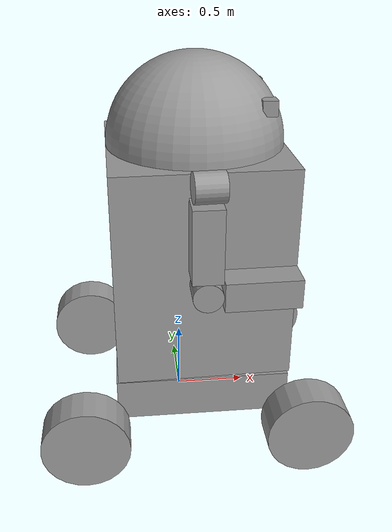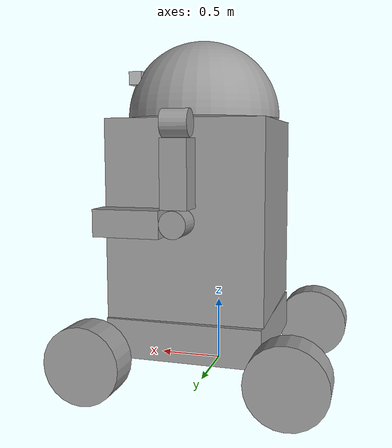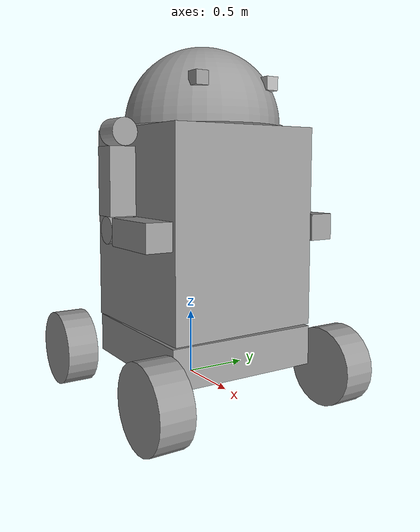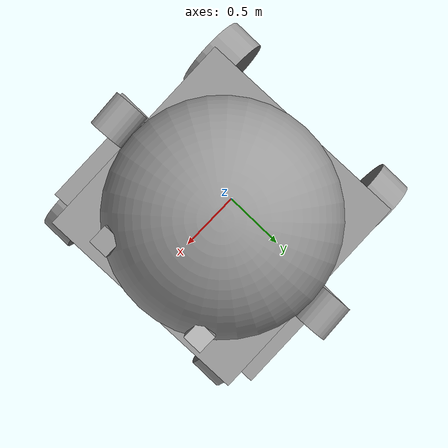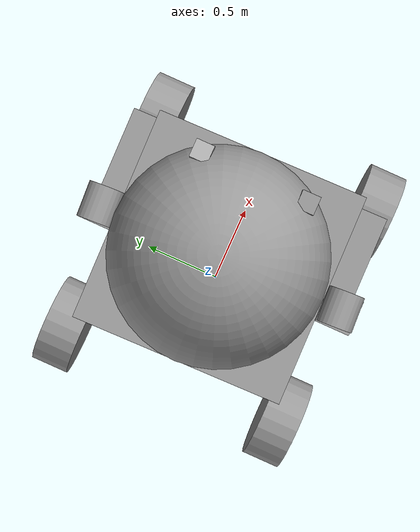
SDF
<?xml version='1.0'?>
<sdf version='1.7'>
  <model name='my_vehicle_hw'>
    <link name='link_0'>
      <inertial>
        <mass>1</mass>
        <inertia>
          <ixx>0.145833</ixx>
          <ixy>0</ixy>
          <ixz>0</ixz>
          <iyy>0.145833</iyy>
          <iyz>0</iyz>
          <izz>0.125</izz>
        </inertia>
        <pose>0 0 0 1.5707 -0 0</pose>
      </inertial>
      <pose>-0.7 0.77503 0.154925 1e-05 -0 0</pose>
      <gravity>1</gravity>
      <self_collide>0</self_collide>
      <kinematic>0</kinematic>
      <enable_wind>0</enable_wind>
      <visual name='visual'>
        <pose>0 0 0 1.5707 -0 0</pose>
        <geometry>
          <cylinder>
            <radius>0.3</radius>
            <length>0.25</length>
          </cylinder>
        </geometry>
        <material>
          <lighting>1</lighting>
          <script>
            <uri>file://media/materials/scripts/gazebo.material</uri>
            <name>Gazebo/Grey</name>
          </script>
          <shader type='pixel'>
            <normal_map>__default__</normal_map>
          </shader>
          <ambient>0.3 0.3 0.3 1</ambient>
          <diffuse>0.7 0.7 0.7 1</diffuse>
          <specular>0.01 0.01 0.01 1</specular>
          <emissive>0 0 0 1</emissive>
        </material>
        <transparency>0</transparency>
        <cast_shadows>1</cast_shadows>
      </visual>
      <collision name='collision'>
        <laser_retro>0</laser_retro>
        <max_contacts>10</max_contacts>
        <pose>0 0 0 1.5707 -0 0</pose>
        <geometry>
          <cylinder>
            <radius>0.3</radius>
            <length>0.25</length>
          </cylinder>
        </geometry>
        <surface>
          <friction>
            <ode>
              <mu>1</mu>
              <mu2>1</mu2>
              <fdir1>0 0 0</fdir1>
              <slip1>0</slip1>
              <slip2>0</slip2>
            </ode>
            <torsional>
              <coefficient>1</coefficient>
              <patch_radius>0</patch_radius>
              <surface_radius>0</surface_radius>
              <use_patch_radius>1</use_patch_radius>
              <ode>
                <slip>0</slip>
              </ode>
            </torsional>
          </friction>
          <bounce>
            <restitution_coefficient>0</restitution_coefficient>
            <threshold>1e+06</threshold>
          </bounce>
          <contact>
            <collide_without_contact>0</collide_without_contact>
            <collide_without_contact_bitmask>1</collide_without_contact_bitmask>
            <collide_bitmask>1</collide_bitmask>
            <ode>
              <soft_cfm>0</soft_cfm>
              <soft_erp>0.2</soft_erp>
              <kp>1e+13</kp>
              <kd>1</kd>
              <max_vel>0.01</max_vel>
              <min_depth>0</min_depth>
            </ode>
            <bullet>
              <split_impulse>1</split_impulse>
              <split_impulse_penetration_threshold>-0.01</split_impulse_penetration_threshold>
              <soft_cfm>0</soft_cfm>
              <soft_erp>0.2</soft_erp>
              <kp>1e+13</kp>
              <kd>1</kd>
            </bullet>
          </contact>
        </surface>
      </collision>
    </link>
    <link name='link_0_0'>
      <inertial>
        <mass>1</mass>
        <inertia>
          <ixx>0.145833</ixx>
          <ixy>0</ixy>
          <ixz>0</ixz>
          <iyy>0.145833</iyy>
          <iyz>0</iyz>
          <izz>0.125</izz>
        </inertia>
        <pose>0 0 0 0 -0 0</pose>
      </inertial>
      <pose>0.55163 -0.27481 2.28002 2.3e-05 6e-06 0.006341</pose>
      <gravity>1</gravity>
      <self_collide>0</self_collide>
      <kinematic>0</kinematic>
      <enable_wind>0</enable_wind>
      <sensor name='lidar' type='ray'>
        <pose>0 0 0 1.5707 -0 0</pose>
        <visualize>1</visualize>
        <update_rate>30</update_rate>
        <ray>
          <scan>
            <horizontal>
              <samples>32</samples>
              <resolution>1</resolution>
              <min_angle>-0.535292</min_angle>
              <max_angle>0.186227</max_angle>
            </horizontal>
            <vertical>
              <samples>1</samples>
              <min_angle>0</min_angle>
              <max_angle>0</max_angle>
            </vertical>
          </scan>
          <range>
            <min>0.05</min>
            <max>70</max>
            <resolution>0.02</resolution>
          </range>
        </ray>
        <plugin name='gazebo_ros_lidar_publisher' filename='libgazebo_ros_laser.so'>
          <topicName>/my_vehicle/laser/scan</topicName>
          <frameName>lidar_link</frameName>
          <robotNamespace>/</robotNamespace>
        </plugin>
      </sensor>
      <visual name='visual'>
        <pose>0 0 0 0 -0 0</pose>
        <geometry>
          <box>
            <size>0.1 0.1 0.1</size>
          </box>
        </geometry>
        <material>
          <lighting>1</lighting>
          <script>
            <uri>file://media/materials/scripts/gazebo.material</uri>
            <name>Gazebo/Grey</name>
          </script>
          <shader type='pixel'>
            <normal_map>__default__</normal_map>
          </shader>
          <ambient>0.3 0.3 0.3 1</ambient>
          <diffuse>0.7 0.7 0.7 1</diffuse>
          <specular>0.01 0.01 0.01 1</specular>
          <emissive>0 0 0 1</emissive>
        </material>
        <transparency>0</transparency>
        <cast_shadows>1</cast_shadows>
      </visual>
      <collision name='collision'>
        <laser_retro>0</laser_retro>
        <max_contacts>10</max_contacts>
        <pose>0 0 0 0 -0 0</pose>
        <geometry>
          <cylinder>
            <radius>0.04</radius>
            <length>0.1</length>
          </cylinder>
        </geometry>
        <surface>
          <friction>
            <ode>
              <mu>1</mu>
              <mu2>1</mu2>
              <fdir1>0 0 0</fdir1>
              <slip1>0</slip1>
              <slip2>0</slip2>
            </ode>
            <torsional>
              <coefficient>1</coefficient>
              <patch_radius>0</patch_radius>
              <surface_radius>0</surface_radius>
              <use_patch_radius>1</use_patch_radius>
              <ode>
                <slip>0</slip>
              </ode>
            </torsional>
          </friction>
          <bounce>
            <restitution_coefficient>0</restitution_coefficient>
            <threshold>1e+06</threshold>
          </bounce>
          <contact>
            <collide_without_contact>0</collide_without_contact>
            <collide_without_contact_bitmask>1</collide_without_contact_bitmask>
            <collide_bitmask>1</collide_bitmask>
            <ode>
              <soft_cfm>0</soft_cfm>
              <soft_erp>0.2</soft_erp>
              <kp>1e+13</kp>
              <kd>1</kd>
              <max_vel>0.01</max_vel>
              <min_depth>0</min_depth>
            </ode>
            <bullet>
              <split_impulse>1</split_impulse>
              <split_impulse_penetration_threshold>-0.01</split_impulse_penetration_threshold>
              <soft_cfm>0</soft_cfm>
              <soft_erp>0.2</soft_erp>
              <kp>1e+13</kp>
              <kd>1</kd>
            </bullet>
          </contact>
        </surface>
      </collision>
    </link>
    <link name='link_0_1'>
      <inertial>
        <mass>20</mass>
        <inertia>
          <ixx>1.81667</ixx>
          <ixy>0</ixy>
          <ixz>0</ixz>
          <iyy>6.81667</iyy>
          <iyz>0</iyz>
          <izz>8.33333</izz>
        </inertia>
        <pose>0 0 0 0 -0 0</pose>
      </inertial>
      <pose>0.120594 0.023149 0.304938 0 -0 0</pose>
      <gravity>1</gravity>
      <self_collide>0</self_collide>
      <kinematic>0</kinematic>
      <enable_wind>0</enable_wind>
      <visual name='visual'>
        <pose>0 0 0 0 -0 0</pose>
        <geometry>
          <box>
            <size>1.2 1.2 0.3</size>
          </box>
        </geometry>
        <material>
          <lighting>1</lighting>
          <script>
            <uri>file://media/materials/scripts/gazebo.material</uri>
            <name>Gazebo/Grey</name>
          </script>
          <shader type='pixel'>
            <normal_map>__default__</normal_map>
          </shader>
          <ambient>0.3 0.3 0.3 1</ambient>
          <diffuse>0.7 0.7 0.7 1</diffuse>
          <specular>0.01 0.01 0.01 1</specular>
          <emissive>0 0 0 1</emissive>
        </material>
        <transparency>0</transparency>
        <cast_shadows>1</cast_shadows>
      </visual>
      <collision name='collision'>
        <laser_retro>0</laser_retro>
        <max_contacts>10</max_contacts>
        <pose>0 0 0 0 -0 0</pose>
        <geometry>
          <box>
            <size>1.2 1.2 0.3</size>
          </box>
        </geometry>
        <surface>
          <friction>
            <ode>
              <mu>1</mu>
              <mu2>1</mu2>
              <fdir1>0 0 0</fdir1>
              <slip1>0</slip1>
              <slip2>0</slip2>
            </ode>
            <torsional>
              <coefficient>1</coefficient>
              <patch_radius>0</patch_radius>
              <surface_radius>0</surface_radius>
              <use_patch_radius>1</use_patch_radius>
              <ode>
                <slip>0</slip>
              </ode>
            </torsional>
          </friction>
          <bounce>
            <restitution_coefficient>0</restitution_coefficient>
            <threshold>1e+06</threshold>
          </bounce>
          <contact>
            <collide_without_contact>0</collide_without_contact>
            <collide_without_contact_bitmask>1</collide_without_contact_bitmask>
            <collide_bitmask>1</collide_bitmask>
            <ode>
              <soft_cfm>0</soft_cfm>
              <soft_erp>0.2</soft_erp>
              <kp>1e+13</kp>
              <kd>1</kd>
              <max_vel>0.01</max_vel>
              <min_depth>0</min_depth>
            </ode>
            <bullet>
              <split_impulse>1</split_impulse>
              <split_impulse_penetration_threshold>-0.01</split_impulse_penetration_threshold>
              <soft_cfm>0</soft_cfm>
              <soft_erp>0.2</soft_erp>
              <kp>1e+13</kp>
              <kd>1</kd>
            </bullet>
          </contact>
        </surface>
      </collision>
    </link>
    <link name='link_0_clone'>
      <inertial>
        <mass>1</mass>
        <inertia>
          <ixx>0.145833</ixx>
          <ixy>0</ixy>
          <ixz>0</ixz>
          <iyy>0.145833</iyy>
          <iyz>0</iyz>
          <izz>0.125</izz>
        </inertia>
        <pose>0 0 0 1.5707 -0 0</pose>
      </inertial>
      <pose>-0.7 -0.775033 0.154923 2e-05 -0 0</pose>
      <gravity>1</gravity>
      <self_collide>0</self_collide>
      <kinematic>0</kinematic>
      <enable_wind>0</enable_wind>
      <visual name='visual'>
        <pose>0 0 0 1.5707 -0 0</pose>
        <geometry>
          <cylinder>
            <radius>0.3</radius>
            <length>0.25</length>
          </cylinder>
        </geometry>
        <material>
          <lighting>1</lighting>
          <script>
            <uri>file://media/materials/scripts/gazebo.material</uri>
            <name>Gazebo/Grey</name>
          </script>
          <shader type='pixel'>
            <normal_map>__default__</normal_map>
          </shader>
          <ambient>0.3 0.3 0.3 1</ambient>
          <diffuse>0.7 0.7 0.7 1</diffuse>
          <specular>0.01 0.01 0.01 1</specular>
          <emissive>0 0 0 1</emissive>
        </material>
        <transparency>0</transparency>
        <cast_shadows>1</cast_shadows>
      </visual>
      <collision name='collision'>
        <laser_retro>0</laser_retro>
        <max_contacts>10</max_contacts>
        <pose>0 0 0 1.5707 -0 0</pose>
        <geometry>
          <cylinder>
            <radius>0.3</radius>
            <length>0.25</length>
          </cylinder>
        </geometry>
        <surface>
          <friction>
            <ode>
              <mu>1</mu>
              <mu2>1</mu2>
              <fdir1>0 0 0</fdir1>
              <slip1>0</slip1>
              <slip2>0</slip2>
            </ode>
            <torsional>
              <coefficient>1</coefficient>
              <patch_radius>0</patch_radius>
              <surface_radius>0</surface_radius>
              <use_patch_radius>1</use_patch_radius>
              <ode>
                <slip>0</slip>
              </ode>
            </torsional>
          </friction>
          <bounce>
            <restitution_coefficient>0</restitution_coefficient>
            <threshold>1e+06</threshold>
          </bounce>
          <contact>
            <collide_without_contact>0</collide_without_contact>
            <collide_without_contact_bitmask>1</collide_without_contact_bitmask>
            <collide_bitmask>1</collide_bitmask>
            <ode>
              <soft_cfm>0</soft_cfm>
              <soft_erp>0.2</soft_erp>
              <kp>1e+13</kp>
              <kd>1</kd>
              <max_vel>0.01</max_vel>
              <min_depth>0</min_depth>
            </ode>
            <bullet>
              <split_impulse>1</split_impulse>
              <split_impulse_penetration_threshold>-0.01</split_impulse_penetration_threshold>
              <soft_cfm>0</soft_cfm>
              <soft_erp>0.2</soft_erp>
              <kp>1e+13</kp>
              <kd>1</kd>
            </bullet>
          </contact>
        </surface>
      </collision>
    </link>
    <link name='link_0_clone_0'>
      <inertial>
        <mass>1</mass>
        <inertia>
          <ixx>0.145833</ixx>
          <ixy>0</ixy>
          <ixz>0</ixz>
          <iyy>0.145833</iyy>
          <iyz>0</iyz>
          <izz>0.125</izz>
        </inertia>
        <pose>0 0 0 1.5707 -0 0</pose>
      </inertial>
      <pose>0.810916 0.776411 0.153094 2e-05 -0 0</pose>
      <gravity>1</gravity>
      <self_collide>0</self_collide>
      <kinematic>0</kinematic>
      <enable_wind>0</enable_wind>
      <visual name='visual'>
        <pose>0 0 0 1.5707 -0 0</pose>
        <geometry>
          <cylinder>
            <radius>0.3</radius>
            <length>0.25</length>
          </cylinder>
        </geometry>
        <material>
          <lighting>1</lighting>
          <script>
            <uri>file://media/materials/scripts/gazebo.material</uri>
            <name>Gazebo/Grey</name>
          </script>
          <shader type='pixel'>
            <normal_map>__default__</normal_map>
          </shader>
          <ambient>0.3 0.3 0.3 1</ambient>
          <diffuse>0.7 0.7 0.7 1</diffuse>
          <specular>0.01 0.01 0.01 1</specular>
          <emissive>0 0 0 1</emissive>
        </material>
        <transparency>0</transparency>
        <cast_shadows>1</cast_shadows>
      </visual>
      <collision name='collision'>
        <laser_retro>0</laser_retro>
        <max_contacts>10</max_contacts>
        <pose>0 0 0 1.5707 -0 0</pose>
        <geometry>
          <cylinder>
            <radius>0.3</radius>
            <length>0.25</length>
          </cylinder>
        </geometry>
        <surface>
          <friction>
            <ode>
              <mu>1</mu>
              <mu2>1</mu2>
              <fdir1>0 0 0</fdir1>
              <slip1>0</slip1>
              <slip2>0</slip2>
            </ode>
            <torsional>
              <coefficient>1</coefficient>
              <patch_radius>0</patch_radius>
              <surface_radius>0</surface_radius>
              <use_patch_radius>1</use_patch_radius>
              <ode>
                <slip>0</slip>
              </ode>
            </torsional>
          </friction>
          <bounce>
            <restitution_coefficient>0</restitution_coefficient>
            <threshold>1e+06</threshold>
          </bounce>
          <contact>
            <collide_without_contact>0</collide_without_contact>
            <collide_without_contact_bitmask>1</collide_without_contact_bitmask>
            <collide_bitmask>1</collide_bitmask>
            <ode>
              <soft_cfm>0</soft_cfm>
              <soft_erp>0.2</soft_erp>
              <kp>1e+13</kp>
              <kd>1</kd>
              <max_vel>0.01</max_vel>
              <min_depth>0</min_depth>
            </ode>
            <bullet>
              <split_impulse>1</split_impulse>
              <split_impulse_penetration_threshold>-0.01</split_impulse_penetration_threshold>
              <soft_cfm>0</soft_cfm>
              <soft_erp>0.2</soft_erp>
              <kp>1e+13</kp>
              <kd>1</kd>
            </bullet>
          </contact>
        </surface>
      </collision>
    </link>
    <link name='link_0_clone_1'>
      <inertial>
        <mass>1</mass>
        <inertia>
          <ixx>0.145833</ixx>
          <ixy>0</ixy>
          <ixz>0</ixz>
          <iyy>0.145833</iyy>
          <iyz>0</iyz>
          <izz>0.125</izz>
        </inertia>
        <pose>0 0 0 1.5707 -0 0</pose>
      </inertial>
      <pose>0.830163 -0.773416 0.152776 2e-05 -0 0</pose>
      <gravity>1</gravity>
      <self_collide>0</self_collide>
      <kinematic>0</kinematic>
      <enable_wind>0</enable_wind>
      <visual name='visual'>
        <pose>0 0 0 1.5707 -0 0</pose>
        <geometry>
          <cylinder>
            <radius>0.3</radius>
            <length>0.25</length>
          </cylinder>
        </geometry>
        <material>
          <lighting>1</lighting>
          <script>
            <uri>file://media/materials/scripts/gazebo.material</uri>
            <name>Gazebo/Grey</name>
          </script>
          <shader type='pixel'>
            <normal_map>__default__</normal_map>
          </shader>
          <ambient>0.3 0.3 0.3 1</ambient>
          <diffuse>0.7 0.7 0.7 1</diffuse>
          <specular>0.01 0.01 0.01 1</specular>
          <emissive>0 0 0 1</emissive>
        </material>
        <transparency>0</transparency>
        <cast_shadows>1</cast_shadows>
      </visual>
      <collision name='collision'>
        <laser_retro>0</laser_retro>
        <max_contacts>10</max_contacts>
        <pose>0 0 0 1.5707 -0 0</pose>
        <geometry>
          <cylinder>
            <radius>0.3</radius>
            <length>0.25</length>
          </cylinder>
        </geometry>
        <surface>
          <friction>
            <ode>
              <mu>1</mu>
              <mu2>1</mu2>
              <fdir1>0 0 0</fdir1>
              <slip1>0</slip1>
              <slip2>0</slip2>
            </ode>
            <torsional>
              <coefficient>1</coefficient>
              <patch_radius>0</patch_radius>
              <surface_radius>0</surface_radius>
              <use_patch_radius>1</use_patch_radius>
              <ode>
                <slip>0</slip>
              </ode>
            </torsional>
          </friction>
          <bounce>
            <restitution_coefficient>0</restitution_coefficient>
            <threshold>1e+06</threshold>
          </bounce>
          <contact>
            <collide_without_contact>0</collide_without_contact>
            <collide_without_contact_bitmask>1</collide_without_contact_bitmask>
            <collide_bitmask>1</collide_bitmask>
            <ode>
              <soft_cfm>0</soft_cfm>
              <soft_erp>0.2</soft_erp>
              <kp>1e+13</kp>
              <kd>1</kd>
              <max_vel>0.01</max_vel>
              <min_depth>0</min_depth>
            </ode>
            <bullet>
              <split_impulse>1</split_impulse>
              <split_impulse_penetration_threshold>-0.01</split_impulse_penetration_threshold>
              <soft_cfm>0</soft_cfm>
              <soft_erp>0.2</soft_erp>
              <kp>1e+13</kp>
              <kd>1</kd>
            </bullet>
          </contact>
        </surface>
      </collision>
    </link>
    <link name='link_1'>
      <inertial>
        <mass>1</mass>
        <inertia>
          <ixx>0.166667</ixx>
          <ixy>0</ixy>
          <ixz>0</ixz>
          <iyy>0.166667</iyy>
          <iyz>0</iyz>
          <izz>0.166667</izz>
        </inertia>
        <pose>0 0 0 0 -0 0</pose>
      </inertial>
      <pose>0.116835 -0.695646 1.56953 0 -0 0</pose>
      <gravity>1</gravity>
      <self_collide>0</self_collide>
      <kinematic>0</kinematic>
      <enable_wind>0</enable_wind>
      <visual name='visual'>
        <pose>0 0 0 0 -0 0</pose>
        <geometry>
          <box>
            <size>0.2 0.2 0.5</size>
          </box>
        </geometry>
        <material>
          <lighting>1</lighting>
          <script>
            <uri>file://media/materials/scripts/gazebo.material</uri>
            <name>Gazebo/Grey</name>
          </script>
          <shader type='pixel'>
            <normal_map>__default__</normal_map>
          </shader>
          <ambient>0.3 0.3 0.3 1</ambient>
          <diffuse>0.7 0.7 0.7 1</diffuse>
          <specular>0.01 0.01 0.01 1</specular>
          <emissive>0 0 0 1</emissive>
        </material>
        <transparency>0</transparency>
        <cast_shadows>1</cast_shadows>
      </visual>
      <collision name='collision'>
        <laser_retro>0</laser_retro>
        <max_contacts>10</max_contacts>
        <pose>0 0 0 0 -0 0</pose>
        <geometry>
          <box>
            <size>0.2 0.2 0.5</size>
          </box>
        </geometry>
        <surface>
          <friction>
            <ode>
              <mu>1</mu>
              <mu2>1</mu2>
              <fdir1>0 0 0</fdir1>
              <slip1>0</slip1>
              <slip2>0</slip2>
            </ode>
            <torsional>
              <coefficient>1</coefficient>
              <patch_radius>0</patch_radius>
              <surface_radius>0</surface_radius>
              <use_patch_radius>1</use_patch_radius>
              <ode>
                <slip>0</slip>
              </ode>
            </torsional>
          </friction>
          <bounce>
            <restitution_coefficient>0</restitution_coefficient>
            <threshold>1e+06</threshold>
          </bounce>
          <contact>
            <collide_without_contact>0</collide_without_contact>
            <collide_without_contact_bitmask>1</collide_without_contact_bitmask>
            <collide_bitmask>1</collide_bitmask>
            <ode>
              <soft_cfm>0</soft_cfm>
              <soft_erp>0.2</soft_erp>
              <kp>1e+13</kp>
              <kd>1</kd>
              <max_vel>0.01</max_vel>
              <min_depth>0</min_depth>
            </ode>
            <bullet>
              <split_impulse>1</split_impulse>
              <split_impulse_penetration_threshold>-0.01</split_impulse_penetration_threshold>
              <soft_cfm>0</soft_cfm>
              <soft_erp>0.2</soft_erp>
              <kp>1e+13</kp>
              <kd>1</kd>
            </bullet>
          </contact>
        </surface>
      </collision>
    </link>
    <link name='link_1_clone'>
      <inertial>
        <mass>1</mass>
        <inertia>
          <ixx>0.166667</ixx>
          <ixy>0</ixy>
          <ixz>0</ixz>
          <iyy>0.166667</iyy>
          <iyz>0</iyz>
          <izz>0.166667</izz>
        </inertia>
        <pose>0 0 0 1.5707 -0 0</pose>
      </inertial>
      <pose>0.476279 -0.684024 1.21376 0 0 -1.55415</pose>
      <gravity>1</gravity>
      <self_collide>0</self_collide>
      <kinematic>0</kinematic>
      <enable_wind>0</enable_wind>
      <visual name='visual'>
        <pose>0 0 0 1.5707 -0 0</pose>
        <geometry>
          <box>
            <size>0.2 0.2 0.5</size>
          </box>
        </geometry>
        <material>
          <lighting>1</lighting>
          <script>
            <uri>file://media/materials/scripts/gazebo.material</uri>
            <name>Gazebo/Grey</name>
          </script>
          <shader type='pixel'>
            <normal_map>__default__</normal_map>
          </shader>
          <ambient>0.3 0.3 0.3 1</ambient>
          <diffuse>0.7 0.7 0.7 1</diffuse>
          <specular>0.01 0.01 0.01 1</specular>
          <emissive>0 0 0 1</emissive>
        </material>
        <transparency>0</transparency>
        <cast_shadows>1</cast_shadows>
      </visual>
      <collision name='collision'>
        <laser_retro>0</laser_retro>
        <max_contacts>10</max_contacts>
        <pose>0 0 0 1.5707 -0 0</pose>
        <geometry>
          <box>
            <size>0.2 0.2 0.5</size>
          </box>
        </geometry>
        <surface>
          <friction>
            <ode>
              <mu>1</mu>
              <mu2>1</mu2>
              <fdir1>0 0 0</fdir1>
              <slip1>0</slip1>
              <slip2>0</slip2>
            </ode>
            <torsional>
              <coefficient>1</coefficient>
              <patch_radius>0</patch_radius>
              <surface_radius>0</surface_radius>
              <use_patch_radius>1</use_patch_radius>
              <ode>
                <slip>0</slip>
              </ode>
            </torsional>
          </friction>
          <bounce>
            <restitution_coefficient>0</restitution_coefficient>
            <threshold>1e+06</threshold>
          </bounce>
          <contact>
            <collide_without_contact>0</collide_without_contact>
            <collide_without_contact_bitmask>1</collide_without_contact_bitmask>
            <collide_bitmask>1</collide_bitmask>
            <ode>
              <soft_cfm>0</soft_cfm>
              <soft_erp>0.2</soft_erp>
              <kp>1e+13</kp>
              <kd>1</kd>
              <max_vel>0.01</max_vel>
              <min_depth>0</min_depth>
            </ode>
            <bullet>
              <split_impulse>1</split_impulse>
              <split_impulse_penetration_threshold>-0.01</split_impulse_penetration_threshold>
              <soft_cfm>0</soft_cfm>
              <soft_erp>0.2</soft_erp>
              <kp>1e+13</kp>
              <kd>1</kd>
            </bullet>
          </contact>
        </surface>
      </collision>
    </link>
    <link name='link_1_clone_0'>
      <inertial>
        <mass>1</mass>
        <inertia>
          <ixx>0.166667</ixx>
          <ixy>0</ixy>
          <ixz>0</ixz>
          <iyy>0.166667</iyy>
          <iyz>0</iyz>
          <izz>0.166667</izz>
        </inertia>
        <pose>0 0 0 0 -0 0</pose>
      </inertial>
      <pose>0.107921 0.723148 1.56963 0 -0 0</pose>
      <gravity>1</gravity>
      <self_collide>0</self_collide>
      <kinematic>0</kinematic>
      <enable_wind>0</enable_wind>
      <visual name='visual'>
        <pose>0 0 0 0 -0 0</pose>
        <geometry>
          <box>
            <size>0.2 0.2 0.5</size>
          </box>
        </geometry>
        <material>
          <lighting>1</lighting>
          <script>
            <uri>file://media/materials/scripts/gazebo.material</uri>
            <name>Gazebo/Grey</name>
          </script>
          <shader type='pixel'>
            <normal_map>__default__</normal_map>
          </shader>
          <ambient>0.3 0.3 0.3 1</ambient>
          <diffuse>0.7 0.7 0.7 1</diffuse>
          <specular>0.01 0.01 0.01 1</specular>
          <emissive>0 0 0 1</emissive>
        </material>
        <transparency>0</transparency>
        <cast_shadows>1</cast_shadows>
      </visual>
      <collision name='collision'>
        <laser_retro>0</laser_retro>
        <max_contacts>10</max_contacts>
        <pose>0 0 0 0 -0 0</pose>
        <geometry>
          <box>
            <size>0.2 0.2 0.5</size>
          </box>
        </geometry>
        <surface>
          <friction>
            <ode>
              <mu>1</mu>
              <mu2>1</mu2>
              <fdir1>0 0 0</fdir1>
              <slip1>0</slip1>
              <slip2>0</slip2>
            </ode>
            <torsional>
              <coefficient>1</coefficient>
              <patch_radius>0</patch_radius>
              <surface_radius>0</surface_radius>
              <use_patch_radius>1</use_patch_radius>
              <ode>
                <slip>0</slip>
              </ode>
            </torsional>
          </friction>
          <bounce>
            <restitution_coefficient>0</restitution_coefficient>
            <threshold>1e+06</threshold>
          </bounce>
          <contact>
            <collide_without_contact>0</collide_without_contact>
            <collide_without_contact_bitmask>1</collide_without_contact_bitmask>
            <collide_bitmask>1</collide_bitmask>
            <ode>
              <soft_cfm>0</soft_cfm>
              <soft_erp>0.2</soft_erp>
              <kp>1e+13</kp>
              <kd>1</kd>
              <max_vel>0.01</max_vel>
              <min_depth>0</min_depth>
            </ode>
            <bullet>
              <split_impulse>1</split_impulse>
              <split_impulse_penetration_threshold>-0.01</split_impulse_penetration_threshold>
              <soft_cfm>0</soft_cfm>
              <soft_erp>0.2</soft_erp>
              <kp>1e+13</kp>
              <kd>1</kd>
            </bullet>
          </contact>
        </surface>
      </collision>
    </link>
    <link name='link_1_clone_clone'>
      <inertial>
        <mass>1</mass>
        <inertia>
          <ixx>0.166667</ixx>
          <ixy>0</ixy>
          <ixz>0</ixz>
          <iyy>0.166667</iyy>
          <iyz>0</iyz>
          <izz>0.166667</izz>
        </inertia>
        <pose>0 0 0 1.5707 -0 0</pose>
      </inertial>
      <pose>0.467366 0.734769 1.21386 0 0 -1.55415</pose>
      <gravity>1</gravity>
      <self_collide>0</self_collide>
      <kinematic>0</kinematic>
      <enable_wind>0</enable_wind>
      <visual name='visual'>
        <pose>0 0 0 1.5707 -0 0</pose>
        <geometry>
          <box>
            <size>0.2 0.2 0.5</size>
          </box>
        </geometry>
        <material>
          <lighting>1</lighting>
          <script>
            <uri>file://media/materials/scripts/gazebo.material</uri>
            <name>Gazebo/Grey</name>
          </script>
          <shader type='pixel'>
            <normal_map>__default__</normal_map>
          </shader>
          <ambient>0.3 0.3 0.3 1</ambient>
          <diffuse>0.7 0.7 0.7 1</diffuse>
          <specular>0.01 0.01 0.01 1</specular>
          <emissive>0 0 0 1</emissive>
        </material>
        <transparency>0</transparency>
        <cast_shadows>1</cast_shadows>
      </visual>
      <collision name='collision'>
        <laser_retro>0</laser_retro>
        <max_contacts>10</max_contacts>
        <pose>0 0 0 1.5707 -0 0</pose>
        <geometry>
          <box>
            <size>0.2 0.2 0.5</size>
          </box>
        </geometry>
        <surface>
          <friction>
            <ode>
              <mu>1</mu>
              <mu2>1</mu2>
              <fdir1>0 0 0</fdir1>
              <slip1>0</slip1>
              <slip2>0</slip2>
            </ode>
            <torsional>
              <coefficient>1</coefficient>
              <patch_radius>0</patch_radius>
              <surface_radius>0</surface_radius>
              <use_patch_radius>1</use_patch_radius>
              <ode>
                <slip>0</slip>
              </ode>
            </torsional>
          </friction>
          <bounce>
            <restitution_coefficient>0</restitution_coefficient>
            <threshold>1e+06</threshold>
          </bounce>
          <contact>
            <collide_without_contact>0</collide_without_contact>
            <collide_without_contact_bitmask>1</collide_without_contact_bitmask>
            <collide_bitmask>1</collide_bitmask>
            <ode>
              <soft_cfm>0</soft_cfm>
              <soft_erp>0.2</soft_erp>
              <kp>1e+13</kp>
              <kd>1</kd>
              <max_vel>0.01</max_vel>
              <min_depth>0</min_depth>
            </ode>
            <bullet>
              <split_impulse>1</split_impulse>
              <split_impulse_penetration_threshold>-0.01</split_impulse_penetration_threshold>
              <soft_cfm>0</soft_cfm>
              <soft_erp>0.2</soft_erp>
              <kp>1e+13</kp>
              <kd>1</kd>
            </bullet>
          </contact>
        </surface>
      </collision>
    </link>
    <link name='link_3'>
      <inertial>
        <mass>1</mass>
        <inertia>
          <ixx>0.145833</ixx>
          <ixy>0</ixy>
          <ixz>0</ixz>
          <iyy>0.145833</iyy>
          <iyz>0</iyz>
          <izz>0.125</izz>
        </inertia>
        <pose>0 0 0 1.5707 -0 0</pose>
      </inertial>
      <pose>0.122604 -0.686247 1.2174 0 -0 0</pose>
      <gravity>1</gravity>
      <self_collide>0</self_collide>
      <kinematic>0</kinematic>
      <enable_wind>0</enable_wind>
      <visual name='visual'>
        <pose>0 0 0 1.5707 -0 0</pose>
        <geometry>
          <cylinder>
            <radius>0.1</radius>
            <length>0.2</length>
          </cylinder>
        </geometry>
        <material>
          <lighting>1</lighting>
          <script>
            <uri>file://media/materials/scripts/gazebo.material</uri>
            <name>Gazebo/Grey</name>
          </script>
          <shader type='pixel'>
            <normal_map>__default__</normal_map>
          </shader>
          <ambient>0.3 0.3 0.3 1</ambient>
          <diffuse>0.7 0.7 0.7 1</diffuse>
          <specular>0.01 0.01 0.01 1</specular>
          <emissive>0 0 0 1</emissive>
        </material>
        <transparency>0</transparency>
        <cast_shadows>1</cast_shadows>
      </visual>
      <collision name='collision'>
        <laser_retro>0</laser_retro>
        <max_contacts>10</max_contacts>
        <pose>0 0 0 1.5707 -0 0</pose>
        <geometry>
          <cylinder>
            <radius>0.1</radius>
            <length>0.2</length>
          </cylinder>
        </geometry>
        <surface>
          <friction>
            <ode>
              <mu>1</mu>
              <mu2>1</mu2>
              <fdir1>0 0 0</fdir1>
              <slip1>0</slip1>
              <slip2>0</slip2>
            </ode>
            <torsional>
              <coefficient>1</coefficient>
              <patch_radius>0</patch_radius>
              <surface_radius>0</surface_radius>
              <use_patch_radius>1</use_patch_radius>
              <ode>
                <slip>0</slip>
              </ode>
            </torsional>
          </friction>
          <bounce>
            <restitution_coefficient>0</restitution_coefficient>
            <threshold>1e+06</threshold>
          </bounce>
          <contact>
            <collide_without_contact>0</collide_without_contact>
            <collide_without_contact_bitmask>1</collide_without_contact_bitmask>
            <collide_bitmask>1</collide_bitmask>
            <ode>
              <soft_cfm>0</soft_cfm>
              <soft_erp>0.2</soft_erp>
              <kp>1e+13</kp>
              <kd>1</kd>
              <max_vel>0.01</max_vel>
              <min_depth>0</min_depth>
            </ode>
            <bullet>
              <split_impulse>1</split_impulse>
              <split_impulse_penetration_threshold>-0.01</split_impulse_penetration_threshold>
              <soft_cfm>0</soft_cfm>
              <soft_erp>0.2</soft_erp>
              <kp>1e+13</kp>
              <kd>1</kd>
            </bullet>
          </contact>
        </surface>
      </collision>
    </link>
    <link name='link_3_clone'>
      <inertial>
        <mass>1</mass>
        <inertia>
          <ixx>0.145833</ixx>
          <ixy>0</ixy>
          <ixz>0</ixz>
          <iyy>0.145833</iyy>
          <iyz>0</iyz>
          <izz>0.125</izz>
        </inertia>
        <pose>0 0 0 1.5707 1.5707 -0</pose>
      </inertial>
      <pose>0.129859 -0.686251 1.92172 0 -0 1.62767</pose>
      <gravity>1</gravity>
      <self_collide>0</self_collide>
      <kinematic>0</kinematic>
      <enable_wind>0</enable_wind>
      <visual name='visual'>
        <pose>0 0 0 1.57013 1.5707 -0.000572</pose>
        <geometry>
          <cylinder>
            <radius>0.1</radius>
            <length>0.2</length>
          </cylinder>
        </geometry>
        <material>
          <lighting>1</lighting>
          <script>
            <uri>file://media/materials/scripts/gazebo.material</uri>
            <name>Gazebo/Grey</name>
          </script>
          <shader type='pixel'>
            <normal_map>__default__</normal_map>
          </shader>
          <ambient>0.3 0.3 0.3 1</ambient>
          <diffuse>0.7 0.7 0.7 1</diffuse>
          <specular>0.01 0.01 0.01 1</specular>
          <emissive>0 0 0 1</emissive>
        </material>
        <transparency>0</transparency>
        <cast_shadows>1</cast_shadows>
      </visual>
      <collision name='collision'>
        <laser_retro>0</laser_retro>
        <max_contacts>10</max_contacts>
        <pose>0 0 0 1.5707 1.5707 -0</pose>
        <geometry>
          <cylinder>
            <radius>0.1</radius>
            <length>0.2</length>
          </cylinder>
        </geometry>
        <surface>
          <friction>
            <ode>
              <mu>1</mu>
              <mu2>1</mu2>
              <fdir1>0 0 0</fdir1>
              <slip1>0</slip1>
              <slip2>0</slip2>
            </ode>
            <torsional>
              <coefficient>1</coefficient>
              <patch_radius>0</patch_radius>
              <surface_radius>0</surface_radius>
              <use_patch_radius>1</use_patch_radius>
              <ode>
                <slip>0</slip>
              </ode>
            </torsional>
          </friction>
          <bounce>
            <restitution_coefficient>0</restitution_coefficient>
            <threshold>1e+06</threshold>
          </bounce>
          <contact>
            <collide_without_contact>0</collide_without_contact>
            <collide_without_contact_bitmask>1</collide_without_contact_bitmask>
            <collide_bitmask>1</collide_bitmask>
            <ode>
              <soft_cfm>0</soft_cfm>
              <soft_erp>0.2</soft_erp>
              <kp>1e+13</kp>
              <kd>1</kd>
              <max_vel>0.01</max_vel>
              <min_depth>0</min_depth>
            </ode>
            <bullet>
              <split_impulse>1</split_impulse>
              <split_impulse_penetration_threshold>-0.01</split_impulse_penetration_threshold>
              <soft_cfm>0</soft_cfm>
              <soft_erp>0.2</soft_erp>
              <kp>1e+13</kp>
              <kd>1</kd>
            </bullet>
          </contact>
        </surface>
      </collision>
    </link>
    <link name='link_3_clone_0'>
      <inertial>
        <mass>1</mass>
        <inertia>
          <ixx>0.145833</ixx>
          <ixy>0</ixy>
          <ixz>0</ixz>
          <iyy>0.145833</iyy>
          <iyz>0</iyz>
          <izz>0.125</izz>
        </inertia>
        <pose>0 0 0 1.5707 -0 0</pose>
      </inertial>
      <pose>0.113691 0.732547 1.2175 0 -0 0</pose>
      <gravity>1</gravity>
      <self_collide>0</self_collide>
      <kinematic>0</kinematic>
      <enable_wind>0</enable_wind>
      <visual name='visual'>
        <pose>0 0 0 1.5707 -0 0</pose>
        <geometry>
          <cylinder>
            <radius>0.1</radius>
            <length>0.2</length>
          </cylinder>
        </geometry>
        <material>
          <lighting>1</lighting>
          <script>
            <uri>file://media/materials/scripts/gazebo.material</uri>
            <name>Gazebo/Grey</name>
          </script>
          <shader type='pixel'>
            <normal_map>__default__</normal_map>
          </shader>
          <ambient>0.3 0.3 0.3 1</ambient>
          <diffuse>0.7 0.7 0.7 1</diffuse>
          <specular>0.01 0.01 0.01 1</specular>
          <emissive>0 0 0 1</emissive>
        </material>
        <transparency>0</transparency>
        <cast_shadows>1</cast_shadows>
      </visual>
      <collision name='collision'>
        <laser_retro>0</laser_retro>
        <max_contacts>10</max_contacts>
        <pose>0 0 0 1.5707 -0 0</pose>
        <geometry>
          <cylinder>
            <radius>0.1</radius>
            <length>0.2</length>
          </cylinder>
        </geometry>
        <surface>
          <friction>
            <ode>
              <mu>1</mu>
              <mu2>1</mu2>
              <fdir1>0 0 0</fdir1>
              <slip1>0</slip1>
              <slip2>0</slip2>
            </ode>
            <torsional>
              <coefficient>1</coefficient>
              <patch_radius>0</patch_radius>
              <surface_radius>0</surface_radius>
              <use_patch_radius>1</use_patch_radius>
              <ode>
                <slip>0</slip>
              </ode>
            </torsional>
          </friction>
          <bounce>
            <restitution_coefficient>0</restitution_coefficient>
            <threshold>1e+06</threshold>
          </bounce>
          <contact>
            <collide_without_contact>0</collide_without_contact>
            <collide_without_contact_bitmask>1</collide_without_contact_bitmask>
            <collide_bitmask>1</collide_bitmask>
            <ode>
              <soft_cfm>0</soft_cfm>
              <soft_erp>0.2</soft_erp>
              <kp>1e+13</kp>
              <kd>1</kd>
              <max_vel>0.01</max_vel>
              <min_depth>0</min_depth>
            </ode>
            <bullet>
              <split_impulse>1</split_impulse>
              <split_impulse_penetration_threshold>-0.01</split_impulse_penetration_threshold>
              <soft_cfm>0</soft_cfm>
              <soft_erp>0.2</soft_erp>
              <kp>1e+13</kp>
              <kd>1</kd>
            </bullet>
          </contact>
        </surface>
      </collision>
    </link>
    <link name='link_3_clone_clone_0'>
      <inertial>
        <mass>1</mass>
        <inertia>
          <ixx>0.145833</ixx>
          <ixy>0</ixy>
          <ixz>0</ixz>
          <iyy>0.145833</iyy>
          <iyz>0</iyz>
          <izz>0.125</izz>
        </inertia>
        <pose>0 0 0 1.5707 1.5707 -0</pose>
      </inertial>
      <pose>0.11458 0.723146 1.92338 0 -0 1.62767</pose>
      <gravity>1</gravity>
      <self_collide>0</self_collide>
      <kinematic>0</kinematic>
      <enable_wind>0</enable_wind>
      <visual name='visual'>
        <pose>0 0 0 1.57013 1.5707 -0.000572</pose>
        <geometry>
          <cylinder>
            <radius>0.1</radius>
            <length>0.2</length>
          </cylinder>
        </geometry>
        <material>
          <lighting>1</lighting>
          <script>
            <uri>file://media/materials/scripts/gazebo.material</uri>
            <name>Gazebo/Grey</name>
          </script>
          <shader type='pixel'>
            <normal_map>__default__</normal_map>
          </shader>
          <ambient>0.3 0.3 0.3 1</ambient>
          <diffuse>0.7 0.7 0.7 1</diffuse>
          <specular>0.01 0.01 0.01 1</specular>
          <emissive>0 0 0 1</emissive>
        </material>
        <transparency>0</transparency>
        <cast_shadows>1</cast_shadows>
      </visual>
      <collision name='collision'>
        <laser_retro>0</laser_retro>
        <max_contacts>10</max_contacts>
        <pose>0 0 0 1.57013 1.5707 -0.000572</pose>
        <geometry>
          <cylinder>
            <radius>0.1</radius>
            <length>0.2</length>
          </cylinder>
        </geometry>
        <surface>
          <friction>
            <ode>
              <mu>1</mu>
              <mu2>1</mu2>
              <fdir1>0 0 0</fdir1>
              <slip1>0</slip1>
              <slip2>0</slip2>
            </ode>
            <torsional>
              <coefficient>1</coefficient>
              <patch_radius>0</patch_radius>
              <surface_radius>0</surface_radius>
              <use_patch_radius>1</use_patch_radius>
              <ode>
                <slip>0</slip>
              </ode>
            </torsional>
          </friction>
          <bounce>
            <restitution_coefficient>0</restitution_coefficient>
            <threshold>1e+06</threshold>
          </bounce>
          <contact>
            <collide_without_contact>0</collide_without_contact>
            <collide_without_contact_bitmask>1</collide_without_contact_bitmask>
            <collide_bitmask>1</collide_bitmask>
            <ode>
              <soft_cfm>0</soft_cfm>
              <soft_erp>0.2</soft_erp>
              <kp>1e+13</kp>
              <kd>1</kd>
              <max_vel>0.01</max_vel>
              <min_depth>0</min_depth>
            </ode>
            <bullet>
              <split_impulse>1</split_impulse>
              <split_impulse_penetration_threshold>-0.01</split_impulse_penetration_threshold>
              <soft_cfm>0</soft_cfm>
              <soft_erp>0.2</soft_erp>
              <kp>1e+13</kp>
              <kd>1</kd>
            </bullet>
          </contact>
        </surface>
      </collision>
    </link>
    <link name='link_clone'>
      <inertial>
        <mass>0.5</mass>
        <inertia>
          <ixx>0.333333</ixx>
          <ixy>0</ixy>
          <ixz>0</ixz>
          <iyy>0.333333</iyy>
          <iyz>0</iyz>
          <izz>0.333333</izz>
        </inertia>
        <pose>0 0 0 0 -0 0</pose>
      </inertial>
      <self_collide>0</self_collide>
      <enable_wind>0</enable_wind>
      <kinematic>0</kinematic>
      <pose>0.118148 0.02315 1.21745 1.1e-05 1e-06 0.020929</pose>
      <gravity>1</gravity>
      <visual name='visual'>
        <geometry>
          <box>
            <size>1.2 1.2 1.5</size>
          </box>
        </geometry>
        <material>
          <script>
            <name>Gazebo/Grey</name>
            <uri>file://media/materials/scripts/gazebo.material</uri>
          </script>
          <shader type='pixel'>
            <normal_map>__default__</normal_map>
          </shader>
          <ambient>0.3 0.3 0.3 1</ambient>
          <diffuse>0.7 0.7 0.7 1</diffuse>
          <specular>0.01 0.01 0.01 1</specular>
          <emissive>0 0 0 1</emissive>
        </material>
        <pose>0 0 0 0 -0 0</pose>
        <transparency>0</transparency>
        <cast_shadows>1</cast_shadows>
      </visual>
      <collision name='collision'>
        <laser_retro>0</laser_retro>
        <max_contacts>10</max_contacts>
        <pose>0 0 0 0 -0 0</pose>
        <geometry>
          <box>
            <size>1.2 1.2 1.5</size>
          </box>
        </geometry>
        <surface>
          <friction>
            <ode>
              <mu>1</mu>
              <mu2>1</mu2>
              <fdir1>0 0 0</fdir1>
              <slip1>0</slip1>
              <slip2>0</slip2>
            </ode>
            <torsional>
              <coefficient>1</coefficient>
              <patch_radius>0</patch_radius>
              <surface_radius>0</surface_radius>
              <use_patch_radius>1</use_patch_radius>
              <ode>
                <slip>0</slip>
              </ode>
            </torsional>
          </friction>
          <bounce>
            <restitution_coefficient>0</restitution_coefficient>
            <threshold>1e+06</threshold>
          </bounce>
          <contact>
            <collide_without_contact>0</collide_without_contact>
            <collide_without_contact_bitmask>1</collide_without_contact_bitmask>
            <collide_bitmask>1</collide_bitmask>
            <ode>
              <soft_cfm>0</soft_cfm>
              <soft_erp>0.2</soft_erp>
              <kp>1e+13</kp>
              <kd>1</kd>
              <max_vel>0.01</max_vel>
              <min_depth>0</min_depth>
            </ode>
            <bullet>
              <split_impulse>1</split_impulse>
              <split_impulse_penetration_threshold>-0.01</split_impulse_penetration_threshold>
              <soft_cfm>0</soft_cfm>
              <soft_erp>0.2</soft_erp>
              <kp>1e+13</kp>
              <kd>1</kd>
            </bullet>
          </contact>
        </surface>
      </collision>
    </link>
    <link name='link_clone_clone'>
      <inertial>
        <mass>0.2</mass>
        <inertia>
          <ixx>0.0333333</ixx>
          <ixy>0</ixy>
          <ixz>0</ixz>
          <iyy>0.0333333</iyy>
          <iyz>0</iyz>
          <izz>0.0333333</izz>
        </inertia>
        <pose>0 0 0 0 -0 0</pose>
      </inertial>
      <self_collide>0</self_collide>
      <enable_wind>0</enable_wind>
      <kinematic>0</kinematic>
      <pose>0.129214 0.02318 2.28144 1.1e-05 1e-06 0.020929</pose>
      <gravity>1</gravity>
      <visual name='visual'>
        <geometry>
          <mesh>
            <uri>/home/sa/RE510_2024/Experiment3/class2/homework/src/mobile_robot/models/my_vehicle_hw/Halfcircle.dae</uri>
            <scale>0.006 0.006 0.006</scale>
          </mesh>
        </geometry>
        <material>
          <script>
            <name>Gazebo/Grey</name>
            <uri>file://media/materials/scripts/gazebo.material</uri>
          </script>
          <shader type='pixel'>
            <normal_map>__default__</normal_map>
          </shader>
          <ambient>0.3 0.3 0.3 1</ambient>
          <diffuse>0.7 0.7 0.7 1</diffuse>
          <specular>0.01 0.01 0.01 1</specular>
          <emissive>0 0 0 1</emissive>
        </material>
        <pose>0 0 -0.3 0 -0 0</pose>
        <transparency>0</transparency>
        <cast_shadows>1</cast_shadows>
      </visual>
      <collision name='collision'>
        <laser_retro>0</laser_retro>
        <max_contacts>10</max_contacts>
        <pose>0 0 0 0 -0 0</pose>
        <geometry>
          <box>
            <size>0.5 0.5 0.5</size>
          </box>
        </geometry>
        <surface>
          <friction>
            <ode>
              <mu>1</mu>
              <mu2>1</mu2>
              <fdir1>0 0 0</fdir1>
              <slip1>0</slip1>
              <slip2>0</slip2>
            </ode>
            <torsional>
              <coefficient>1</coefficient>
              <patch_radius>0</patch_radius>
              <surface_radius>0</surface_radius>
              <use_patch_radius>1</use_patch_radius>
              <ode>
                <slip>0</slip>
              </ode>
            </torsional>
          </friction>
          <bounce>
            <restitution_coefficient>0</restitution_coefficient>
            <threshold>1e+06</threshold>
          </bounce>
          <contact>
            <collide_without_contact>0</collide_without_contact>
            <collide_without_contact_bitmask>1</collide_without_contact_bitmask>
            <collide_bitmask>1</collide_bitmask>
            <ode>
              <soft_cfm>0</soft_cfm>
              <soft_erp>0.2</soft_erp>
              <kp>1e+13</kp>
              <kd>1</kd>
              <max_vel>0.01</max_vel>
              <min_depth>0</min_depth>
            </ode>
            <bullet>
              <split_impulse>1</split_impulse>
              <split_impulse_penetration_threshold>-0.01</split_impulse_penetration_threshold>
              <soft_cfm>0</soft_cfm>
              <soft_erp>0.2</soft_erp>
              <kp>1e+13</kp>
              <kd>1</kd>
            </bullet>
          </contact>
        </surface>
      </collision>
    </link>
    <model name='depth_camera'>
      <link name='link'>
        <pose>0 0 0.05 0 -0 0</pose>
        <inertial>
          <mass>0.1</mass>
          <inertia>
            <ixx>0.000166667</ixx>
            <iyy>0.000166667</iyy>
            <izz>0.000166667</izz>
            <ixy>0</ixy>
            <ixz>0</ixz>
            <iyz>0</iyz>
          </inertia>
          <pose>0 0 0 0 -0 0</pose>
        </inertial>
        <collision name='collision'>
          <geometry>
            <box>
              <size>0.1 0.1 0.1</size>
            </box>
          </geometry>
          <max_contacts>10</max_contacts>
          <surface>
            <contact>
              <ode/>
            </contact>
            <bounce/>
            <friction>
              <torsional>
                <ode/>
              </torsional>
              <ode/>
            </friction>
          </surface>
        </collision>
        <visual name='visual'>
          <geometry>
            <box>
              <size>0.1 0.1 0.1</size>
            </box>
          </geometry>
        </visual>
        <sensor name='camera' type='depth'>
          <camera>
            <horizontal_fov>1.047</horizontal_fov>
            <image>
              <width>320</width>
              <height>240</height>
            </image>
            <clip>
              <near>0.1</near>
              <far>100</far>
            </clip>
          </camera>
          <plugin name='camera_plugin' filename='libgazebo_ros_openni_kinect.so'>
            <baseline>0.2</baseline>
            <alwaysOn>1</alwaysOn>
            <updateRate>0.0</updateRate>
            <cameraName>camera_ir</cameraName>
            <imageTopicName>/camera/color/image_raw</imageTopicName>
            <cameraInfoTopicName>/camera/color/camera_info</cameraInfoTopicName>
            <depthImageTopicName>/camera/depth/image_raw</depthImageTopicName>
            <depthImageCameraInfoTopicName>/camera/depth/camera_info</depthImageCameraInfoTopicName>
            <pointCloudTopicName>/camera/depth/points</pointCloudTopicName>
            <frameName>camera_link</frameName>
            <pointCloudCutoff>0.5</pointCloudCutoff>
            <pointCloudCutoffMax>3.0</pointCloudCutoffMax>
            <distortionK1>0</distortionK1>
            <distortionK2>0</distortionK2>
            <distortionK3>0</distortionK3>
            <distortionT1>0</distortionT1>
            <distortionT2>0</distortionT2>
            <CxPrime>0</CxPrime>
            <Cx>0</Cx>
            <Cy>0</Cy>
            <focalLength>0</focalLength>
            <hackBaseline>0</hackBaseline>
            <robotNamespace>/</robotNamespace>
          </plugin>
          <always_on>1</always_on>
          <update_rate>30</update_rate>
          <visualize>1</visualize>
        </sensor>
        <self_collide>0</self_collide>
        <enable_wind>0</enable_wind>
        <kinematic>0</kinematic>
      </link>
      <pose>0.567411 0.323098 2.23001 0 -0 0</pose>
    </model>
    <joint name='body_to_body' type='fixed'>
      <parent>link_0_1</parent>
      <child>link_clone</child>
      <pose>0 0 0 0 -0 0</pose>
      <physics>
        <ode>
          <limit>
            <cfm>0</cfm>
            <erp>0.2</erp>
          </limit>
          <suspension>
            <cfm>0</cfm>
            <erp>0.2</erp>
          </suspension>
        </ode>
      </physics>
    </joint>
    <joint name='body_to_head' type='revolute'>
      <parent>link_clone</parent>
      <child>link_clone_clone</child>
      <pose>0 0 0 0 0 -0.01</pose>
      <axis>
        <xyz>0 0 -1</xyz>
        <limit>
          <lower>-1.79769e+308</lower>
          <upper>1.79769e+308</upper>
          <effort>-1</effort>
          <velocity>-1</velocity>
        </limit>
        <dynamics>
          <spring_reference>0</spring_reference>
          <spring_stiffness>0</spring_stiffness>
          <damping>0</damping>
          <friction>0</friction>
        </dynamics>
      </axis>
      <physics>
        <ode>
          <limit>
            <cfm>0</cfm>
            <erp>0.2</erp>
          </limit>
          <suspension>
            <cfm>0</cfm>
            <erp>0.2</erp>
          </suspension>
        </ode>
      </physics>
    </joint>
    <joint name='eye_camera' type='fixed'>
      <parent>link_clone_clone</parent>
      <child>depth_camera::link</child>
      <pose>0 0 0 0 -0 0</pose>
      <physics>
        <ode>
          <limit>
            <cfm>0</cfm>
            <erp>0.2</erp>
          </limit>
          <suspension>
            <cfm>0</cfm>
            <erp>0.2</erp>
          </suspension>
        </ode>
      </physics>
    </joint>
    <joint name='eye_lidar' type='fixed'>
      <parent>link_clone_clone</parent>
      <child>link_0_0</child>
      <pose>0 0 0 0 -0 0</pose>
      <physics>
        <ode>
          <limit>
            <cfm>0</cfm>
            <erp>0.2</erp>
          </limit>
          <suspension>
            <cfm>0</cfm>
            <erp>0.2</erp>
          </suspension>
        </ode>
      </physics>
    </joint>
    <joint name='front_left_wheel_joint' type='revolute'>
      <parent>link_0_1</parent>
      <child>link_0_clone_0</child>
      <pose>0 0 0 0 -0 0</pose>
      <axis>
        <xyz>0 1 0</xyz>
        <limit>
          <lower>-1.79769e+308</lower>
          <upper>1.79769e+308</upper>
          <effort>-1</effort>
          <velocity>-1</velocity>
        </limit>
        <dynamics>
          <spring_reference>0</spring_reference>
          <spring_stiffness>0</spring_stiffness>
          <damping>0</damping>
          <friction>0</friction>
        </dynamics>
      </axis>
      <physics>
        <ode>
          <limit>
            <cfm>0</cfm>
            <erp>0.2</erp>
          </limit>
          <suspension>
            <cfm>0</cfm>
            <erp>0.2</erp>
          </suspension>
        </ode>
      </physics>
    </joint>
    <joint name='front_right_wheel_joint' type='revolute'>
      <parent>link_0_1</parent>
      <child>link_0_clone_1</child>
      <pose>0 0 0 0 -0 0</pose>
      <axis>
        <xyz>0 1 0</xyz>
        <limit>
          <lower>-1.79769e+308</lower>
          <upper>1.79769e+308</upper>
          <effort>-1</effort>
          <velocity>-1</velocity>
        </limit>
        <dynamics>
          <spring_reference>0</spring_reference>
          <spring_stiffness>0</spring_stiffness>
          <damping>0</damping>
          <friction>0</friction>
        </dynamics>
      </axis>
      <physics>
        <ode>
          <limit>
            <cfm>0</cfm>
            <erp>0.2</erp>
          </limit>
          <suspension>
            <cfm>0</cfm>
            <erp>0.2</erp>
          </suspension>
        </ode>
      </physics>
    </joint>
    <joint name='link_1_JOINT_8' type='fixed'>
      <parent>link_1</parent>
      <child>link_3_clone</child>
      <pose>0 0 0 0 -0 0</pose>
      <physics>
        <ode>
          <limit>
            <cfm>0</cfm>
            <erp>0.2</erp>
          </limit>
          <suspension>
            <cfm>0</cfm>
            <erp>0.2</erp>
          </suspension>
        </ode>
      </physics>
    </joint>
    <joint name='link_1_clone_0_JOINT_0' type='revolute'>
      <parent>link_1_clone_0</parent>
      <child>link_3_clone_0</child>
      <pose>0 0 0 0 -0 0</pose>
      <axis>
        <xyz>-0 -1 -0</xyz>
        <limit>
          <lower>-0.7853</lower>
          <upper>0.7853</upper>
          <effort>-1</effort>
          <velocity>-1</velocity>
        </limit>
        <dynamics>
          <spring_reference>0</spring_reference>
          <spring_stiffness>0</spring_stiffness>
          <damping>0</damping>
          <friction>0</friction>
        </dynamics>
      </axis>
      <physics>
        <ode>
          <limit>
            <cfm>0</cfm>
            <erp>0.2</erp>
          </limit>
          <suspension>
            <cfm>0</cfm>
            <erp>0.2</erp>
          </suspension>
        </ode>
      </physics>
    </joint>
    <joint name='link_3_JOINT_6' type='fixed'>
      <parent>link_3</parent>
      <child>link_1_clone</child>
      <pose>0 0 0 0 -0 0</pose>
      <physics>
        <ode>
          <limit>
            <cfm>0</cfm>
            <erp>0.2</erp>
          </limit>
          <suspension>
            <cfm>0</cfm>
            <erp>0.2</erp>
          </suspension>
        </ode>
      </physics>
    </joint>
    <joint name='link_3_JOINT_7' type='revolute'>
      <parent>link_1</parent>
      <child>link_3</child>
      <pose>0 0 0 0 -0 0</pose>
      <axis>
        <xyz>0 1 0</xyz>
        <limit>
          <lower>-0.7853</lower>
          <upper>0.7853</upper>
          <effort>-1</effort>
          <velocity>-1</velocity>
        </limit>
        <dynamics>
          <spring_reference>0</spring_reference>
          <spring_stiffness>0</spring_stiffness>
          <damping>0</damping>
          <friction>0</friction>
        </dynamics>
      </axis>
      <physics>
        <ode>
          <limit>
            <cfm>0</cfm>
            <erp>0.2</erp>
          </limit>
          <suspension>
            <cfm>0</cfm>
            <erp>0.2</erp>
          </suspension>
        </ode>
      </physics>
    </joint>
    <joint name='link_3_clone_0_JOINT_13' type='fixed'>
      <parent>link_3_clone_0</parent>
      <child>link_1_clone_clone</child>
      <pose>0 0 0 0 -0 0</pose>
      <physics>
        <ode>
          <limit>
            <cfm>0</cfm>
            <erp>0.2</erp>
          </limit>
          <suspension>
            <cfm>0</cfm>
            <erp>0.2</erp>
          </suspension>
        </ode>
      </physics>
    </joint>
    <joint name='link_3_clone_clone_0_JOINT_11' type='fixed'>
      <parent>link_3_clone_clone_0</parent>
      <child>link_1_clone_0</child>
      <pose>0 0 0 0 -0 0</pose>
      <physics>
        <ode>
          <limit>
            <cfm>0</cfm>
            <erp>0.2</erp>
          </limit>
          <suspension>
            <cfm>0</cfm>
            <erp>0.2</erp>
          </suspension>
        </ode>
      </physics>
    </joint>
    <joint name='rear_left_wheel_joint' type='revolute'>
      <parent>link_0_1</parent>
      <child>link_0</child>
      <pose>0 0 0 0 -0 0</pose>
      <axis>
        <xyz>0 1 0</xyz>
        <limit>
          <lower>-1.79769e+308</lower>
          <upper>1.79769e+308</upper>
          <effort>-1</effort>
          <velocity>-1</velocity>
        </limit>
        <dynamics>
          <spring_reference>0</spring_reference>
          <spring_stiffness>0</spring_stiffness>
          <damping>0</damping>
          <friction>0</friction>
        </dynamics>
      </axis>
      <physics>
        <ode>
          <limit>
            <cfm>0</cfm>
            <erp>0.2</erp>
          </limit>
          <suspension>
            <cfm>0</cfm>
            <erp>0.2</erp>
          </suspension>
        </ode>
      </physics>
    </joint>
    <joint name='rear_right_wheel_joint' type='revolute'>
      <parent>link_0_1</parent>
      <child>link_0_clone</child>
      <pose>0 0 0 0 -0 0</pose>
      <axis>
        <xyz>0 1 0</xyz>
        <limit>
          <lower>-1.79769e+308</lower>
          <upper>1.79769e+308</upper>
          <effort>-1</effort>
          <velocity>-1</velocity>
        </limit>
        <dynamics>
          <spring_reference>0</spring_reference>
          <spring_stiffness>0</spring_stiffness>
          <damping>0</damping>
          <friction>0</friction>
        </dynamics>
      </axis>
      <physics>
        <ode>
          <limit>
            <cfm>0</cfm>
            <erp>0.2</erp>
          </limit>
          <suspension>
            <cfm>0</cfm>
            <erp>0.2</erp>
          </suspension>
        </ode>
      </physics>
    </joint>
    <joint name='shoulder_left' type='revolute'>
      <parent>link_clone</parent>
      <child>link_3_clone_clone_0</child>
      <pose>0 0 0 0 -0 0</pose>
      <axis>
        <xyz>1 0 0</xyz>
        <limit>
          <lower>-0.7853</lower>
          <upper>0.7853</upper>
          <effort>-1</effort>
          <velocity>-1</velocity>
        </limit>
        <dynamics>
          <spring_reference>0</spring_reference>
          <spring_stiffness>0</spring_stiffness>
          <damping>0</damping>
          <friction>0</friction>
        </dynamics>
      </axis>
      <physics>
        <ode>
          <limit>
            <cfm>0</cfm>
            <erp>0.2</erp>
          </limit>
          <suspension>
            <cfm>0</cfm>
            <erp>0.2</erp>
          </suspension>
        </ode>
      </physics>
    </joint>
    <joint name='shoulder_right' type='revolute'>
      <parent>link_clone</parent>
      <child>link_3_clone</child>
      <pose>0 0 0 0 -0 0</pose>
      <axis>
        <xyz>1 0 0</xyz>
        <limit>
          <lower>-0.7853</lower>
          <upper>0.7853</upper>
          <effort>-1</effort>
          <velocity>-1</velocity>
        </limit>
        <dynamics>
          <spring_reference>0</spring_reference>
          <spring_stiffness>0</spring_stiffness>
          <damping>0</damping>
          <friction>0</friction>
        </dynamics>
      </axis>
      <physics>
        <ode>
          <limit>
            <cfm>0</cfm>
            <erp>0.2</erp>
          </limit>
          <suspension>
            <cfm>0</cfm>
            <erp>0.2</erp>
          </suspension>
        </ode>
      </physics>
    </joint>
    <static>0</static>
    <allow_auto_disable>1</allow_auto_disable>
    <plugin name='skid_steer_drive_controller' filename='libgazebo_ros_skid_steer_drive.so'>
      <updateRate>5.0</updateRate>
      <robotNamespace>/</robotNamespace>
      <leftFrontJoint>front_left_wheel_joint</leftFrontJoint>
      <rightFrontJoint>front_right_wheel_joint</rightFrontJoint>
      <leftRearJoint>rear_left_wheel_joint</leftRearJoint>
      <rightRearJoint>rear_right_wheel_joint</rightRearJoint>
      <wheelSeparation>1.5</wheelSeparation>
      <wheelDiameter>0.6</wheelDiameter>
      <robotBaseFrame>link_clone</robotBaseFrame>
      <torque>20</torque>
      <topicName>cmd_vel</topicName>
      <broadcastTF>0</broadcastTF>
      <odometryTopic>odom</odometryTopic>
      <odometryFrame>odom</odometryFrame>
      <covariance_x>0.0001</covariance_x>
      <covariance_y>0.0001</covariance_y>
      <covariance_yaw>0.01</covariance_yaw>
    </plugin>
  </model>
</sdf>
